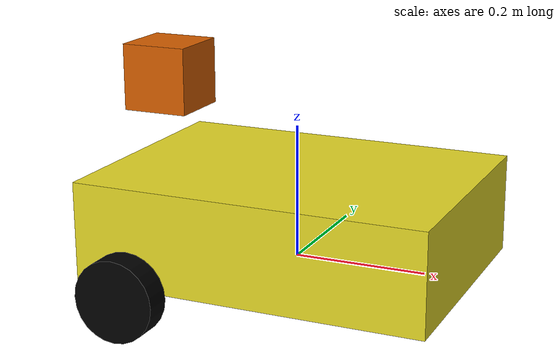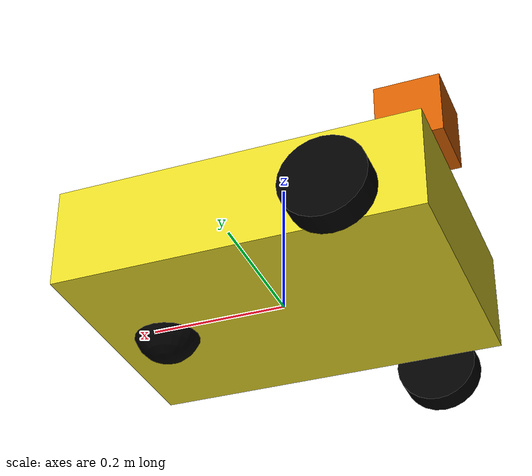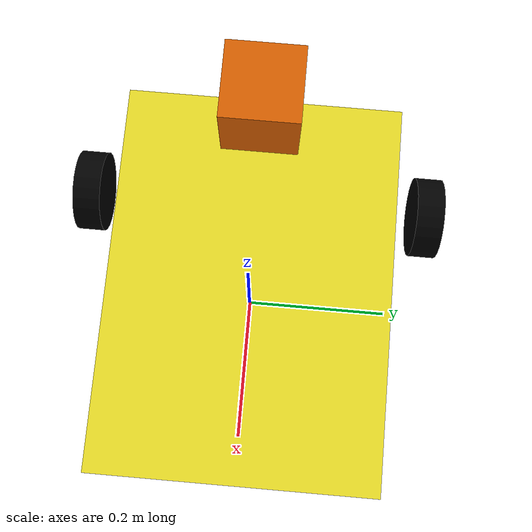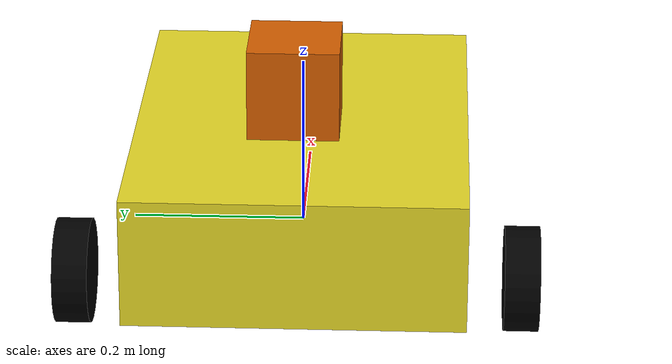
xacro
<?xml version='1.0'?>

<robot name="robot" xmlns:xacro="http://www.ros.org/wiki/xacro">

	<material name="black">
		<color rgba="0 0 0 1"/>
	</material>

	<link name='base_link'> </link>

	<joint name="base_link_joint" type="fixed">
		<origin xyz="0 0 0" rpy="0 0 0" />
		<parent link="base_link"/>
		<child link="robot_body" />
	</joint>

	<link name='robot_body'>
		<pose>0 0 0 0 0 0</pose>

		<inertial>
			<mass value="3"/>
			<origin xyz="0 0 0" rpy=" 0 0 0"/>
			<inertia
					ixx="0.4298" ixy="0" ixz="0"
					iyy="0.207" iyz="0"
					izz="0.236"
			/>
		</inertial>

		<collision name='robot_collision'>
			<origin xyz="0.0 0 0.06" rpy=" 0 0 0"/>
			<geometry>
				<box size="0.53 0.385 0.15"/>
			</geometry>
		</collision>

		<visual name='robot_visual'>
			<origin xyz="0.0 0 0.06" rpy=" 0 0 0"/>
			<geometry>
				<box size="0.53 0.385 0.15"/>
			</geometry>
		</visual>
	</link>

	<link name='left_wheel'>
		<pose>0 0 0 0 0 0</pose>

		<inertial>
			<mass value="2"/>
			<origin xyz="0 0 0" rpy="0 0 0"/>
			<inertia
					ixx="0.000225" ixy="0" ixz="0"
					iyy="0.000225" iyz="0"
					izz="0.0004375"
			/>
		</inertial>

		<collision name='left_wheel_collision'>
			<origin xyz="0 0 0" rpy="0 0 0"/>
			<geometry>
				<cylinder radius="0.06" length="0.04"/>
			</geometry>
		</collision>

		<visual name='left_wheel_visual'>
			<origin xyz="0 0 0" rpy="0 0 0"/>
			<geometry>
				<cylinder radius="0.06" length="0.04"/>
			</geometry>
			<material name="black"/>
		</visual>
	</link>

	<link name='right_wheel'>
		<pose>0 0 0 0 0 0</pose>

		<inertial>
			<mass value="2"/>
			<origin xyz="0 0 0" rpy="0 0 0"/>
			<inertia
					ixx="0.000225" ixy="0" ixz="0"
					iyy="0.000225" iyz="0"
					izz="0.0004375"
			/>
		</inertial>

		<collision name='right_wheel_collision'>
			<origin xyz="0 0 0" rpy="0 0 0"/>
			<geometry>
				<cylinder radius="0.06" length="0.04"/>
			</geometry>
		</collision>

		<visual name='right_wheel_visual'>
			<origin xyz="0 0 0" rpy="0 0 0"/>
			<geometry>
				<cylinder radius="0.06" length="0.04"/>
			</geometry>
			<material name="black"/>
		</visual>
	</link>

	<link name="caster_wheel_forward">
	<pose>0 0 0 0 0 0</pose>

	<inertial>
			<mass value="2"/>
			<origin xyz="0 0 0" rpy="0 0 0"/>
			<inertia
					ixx="0.000225" ixy="0" ixz="0"
					iyy="0.000225" iyz="0"
					izz="0.0004375"
			/>
	</inertial>

		<collision name='caster_wheel_collision'>
			<origin xyz="0 0 0" rpy="0 0 0"/>
			<geometry>
				<sphere radius="0.05" />
			</geometry>
		</collision>

    <visual>
        <geometry>
            <sphere radius="0.05" />
        </geometry>
        <material name="black"/>
    </visual>
</link>

<!-- Link for sensors -->

     <!-- Laser -->
   <link name="laser_frame">
    <collision>
      <origin xyz="0 0 0.0" rpy="0 0 0"/>
      <geometry>
         <box size="0.1 0.1 0.1"/>
      </geometry>
    </collision>

    <visual>
      <origin xyz="0 0 0" rpy="0 0 0"/>
      <geometry>
	    <box size="0.1 0.1 0.1"/>
	    <mesh filename="$(find bibot_description)/sensors/ydlidar/ydlidar.dae"/>
      </geometry>
    </visual>

    <inertial>
      <mass value="1e-5" />
      <origin xyz="0 0 0" rpy="0 0 0"/>
      <inertia ixx="1e-6" ixy="0" ixz="0" iyy="1e-6" iyz="0" izz="1e-6" />
    </inertial>
  </link>

      <!-- Kinect -->

	<joint type="continuous" name="left_wheel_hinge">
		<origin xyz="-0.155 0.255 0" rpy="-${pi/2} 0 0"/>
		<child link="left_wheel"/>
		<parent link="robot_body"/>
		<axis xyz="0 0 1" rpy="0 0 0"/>
		<limit effort="10000" velocity="2000"/>
		<dynamics damping="1.0" friction="1.0"/>
	</joint>

	<joint type="continuous" name="right_wheel_hinge">
		<origin xyz="-0.155 -0.255 0" rpy="-${pi/2} 0  0 "/>
		<child link="right_wheel"/>
		<parent link="robot_body"/>
		<axis xyz="0 0 1" rpy="0 0 0"/>
		<limit effort="10000" velocity="2000"/>
		<dynamics damping="1.0" friction="1.0"/>
	</joint>

	<joint name="caster_wheel_joint_forward" type="fixed">
    <parent link="robot_body"/>
    <child link="caster_wheel_forward"/>
    <origin xyz="0.18 0 0" rpy="0 0 0"/>
	<limit effort="10000" velocity="2000"/>
	<dynamics damping="1.0" friction="1.0"/>
	</joint>

	<joint name="laser_joint" type="fixed">
    <axis xyz="0 0 1" />
    <origin xyz="-0.21 0 0.26	" rpy="0 0 0"/>
    <parent link="robot_body"/>
    <child link="laser_frame"/>
    </joint>

	<gazebo reference="left_wheel">
		<material>Gazebo/Black</material>
	</gazebo>

	<gazebo reference="right_wheel">
		<material>Gazebo/Black</material>
	</gazebo>

	<gazebo reference="caster_wheel_forward">
		<material>Gazebo/Black</material>
	</gazebo>

	<gazebo reference="caster_wheel_backward">
		<material>Gazebo/Black</material>
	</gazebo>
	<gazebo reference="robot_body">
		<material>Gazebo/Yellow</material>
	</gazebo>

</robot>
